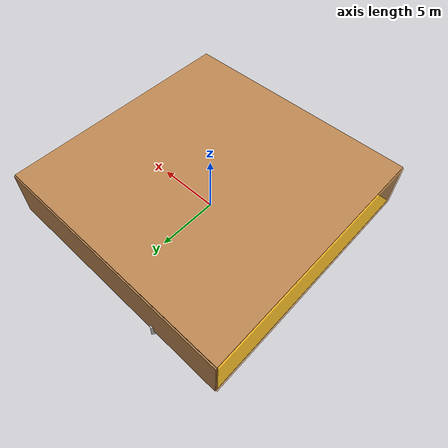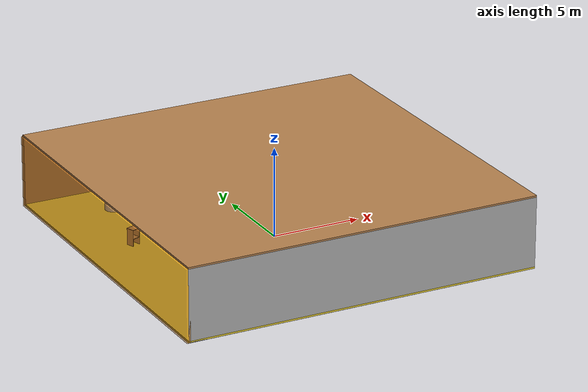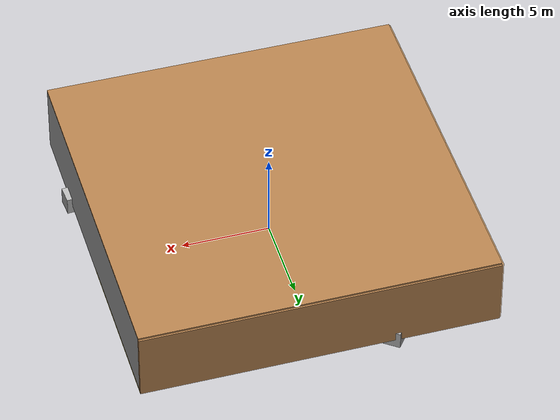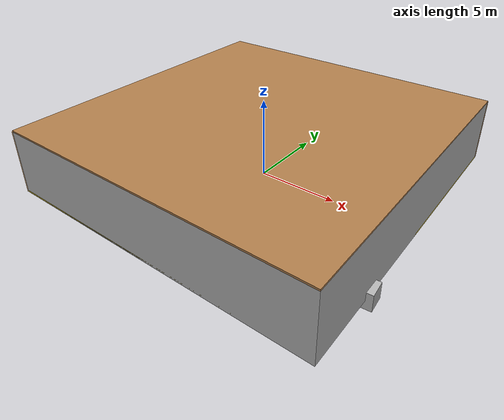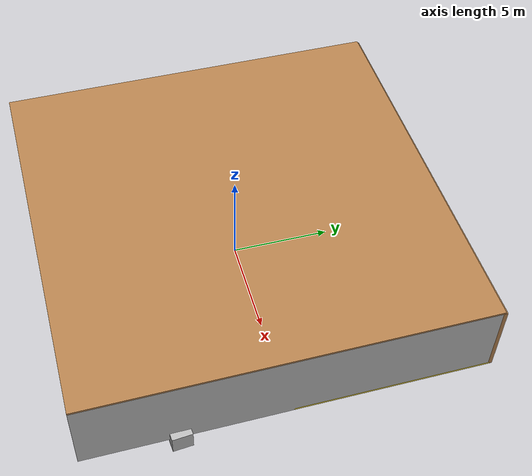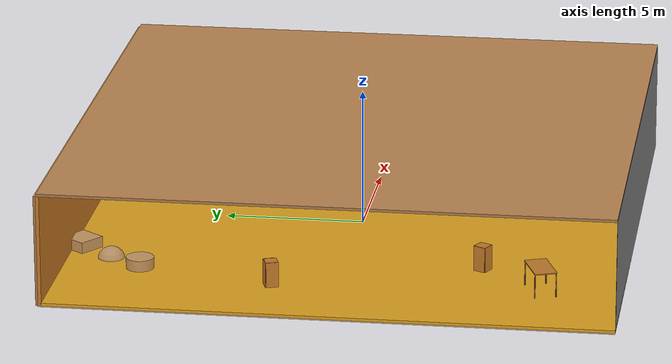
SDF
<sdf version="1.4">
 <world name="default">
  <physics type="ode">
   <max_step_size>0.001</max_step_size>
   <real_time_factor>1</real_time_factor>
   <real_time_update_rate>1000</real_time_update_rate>
   <gravity>0 0 -9.8</gravity>
  </physics>
  <scene><ambient>0.4 0.4 0.4 1</ambient><background>0.7 0.7 0.7 1</background><shadows>1</shadows></scene>
  <model name="Surrounding">
   <static>1</static>
   <link name="Ceiling">
    <collision name="Ceiling_Collision"><geometry><box><size>20 20 0.1</size></box></geometry></collision>
    <visual name="Ceiling_Visual">
     <geometry><box><size>20 20 0.1</size></box></geometry>
     <material>
      <script><uri>file://media/materials/scripts/gazebo.material</uri><name>Gazebo/WoodPallet</name></script>
     </material>
    </visual>
    <pose>0 0 4.05 0 0 0</pose>
   </link>
   <link name="Wall_South">
    <collision name="Wall_South_Collision">
     <geometry><box><size>20 0 4</size></box></geometry>
     <pose>0 0 2 0 -0 0</pose>
    </collision>
    <visual name="Wall_South_Visual">
     <pose>0 0 2 0 -0 0</pose>
     <geometry><box><size>20 0 4</size></box></geometry>
     <material>
      <script><uri>file://media/materials/scripts/gazebo.material</uri><name>Gazebo/Pioneer2Body</name></script>
     </material>
    </visual>
    <velocity_decay><linear>0</linear><angular>0</angular></velocity_decay>
    <pose>0 -10 0 0 -0 0</pose>
   </link>
   <link name="Wall_East">
    <collision name="Wall_21_Collision">
     <geometry><box><size>20 0 4</size></box></geometry>
     <pose>0 0 2 0 -0 0</pose>
    </collision>
    <visual name="Wall_21_Visual">
     <pose>0 0 2 0 -0 0</pose>
     <geometry><box><size>20 0 4</size></box></geometry>
     <material>
      <script><uri>file://media/materials/scripts/gazebo.material</uri><name>Gazebo/LightOn</name></script>
     </material>
    </visual>
    <velocity_decay><linear>0</linear><angular>0</angular></velocity_decay>
    <pose>10 0 0 0 -0 1.5708</pose>
   </link>
   <link name="Wall_North">
    <collision name="Wall_22_Collision">
     <geometry><box><size>20 0.2 4</size></box></geometry>
     <pose>0 0 2 0 -0 0</pose>
    </collision>
    <visual name="Wall_22_Visual">
     <pose>0 0 2 0 -0 0</pose>
     <geometry><box><size>20 0.2 4</size></box></geometry>
     <material>
      <script><uri>file://media/materials/scripts/gazebo.material</uri><name>Gazebo/WoodPallet</name></script>
     </material>
    </visual>
    <velocity_decay><linear>0</linear><angular>0</angular></velocity_decay>
    <pose>0 10 0 0 -0 0</pose>
   </link>
   <link name="Wall_West">
    <collision name="Wall_23_Collision">
     <geometry><box><size>20 0.2 4</size></box></geometry>
     <pose>0 0 2 0 -0 0</pose>
    </collision>
    <visual name="Wall_23_Visual">
     <pose>0 0 2 0 -0 0</pose>
     <geometry><box><size>20 0.2 4</size></box></geometry>
     <material>
      <script>
       <uri>file://media/materials/scripts/gazebo.material</uri>
       <name>Gazebo/OrangeTransparent</name>
      </script>
     </material>
    </visual>
    <velocity_decay><linear>0</linear><angular>0</angular></velocity_decay>
    <pose>-10 0 0 0 0 -1.5708</pose>
   </link>
   <link name="Ground_link">
    <collision name="collision">
     <pose>0 0 .05 0 -0 0</pose>
     <geometry><box><size>20 20 0.1</size></box></geometry>
    </collision>
    <visual name="visual">
     <pose>0 0 .05 0 -0 0</pose>
     <geometry><box><size>20 20 0.1</size></box></geometry>
     <material>
      <script><uri>file://media/materials/scripts/gazebo.material</uri><name>Gazebo/ZincYellow</name></script>
     </material>
    </visual>
   </link>
   <static>1</static>
  </model>
  <spherical_coordinates>
   <surface_model>EARTH_WGS84</surface_model>
   <latitude_deg>0</latitude_deg>
   <longitude_deg>0</longitude_deg>
   <elevation>0</elevation>
   <heading_deg>0</heading_deg>
  </spherical_coordinates>
  <light name="lightball_0" type="diffuse">
   <diffuse>0.8 0.8 0.8 1</diffuse>
   <specular>0.2 0.2 0.2 1</specular>
   <attenuation>
    <range>100</range>
    <constant>0.7</constant>
    <linear>0.01</linear>
    <quadratic>0.001</quadratic>
   </attenuation>
   <direction>-0.5 0.1 -0.9</direction>
   <pose>-0.811851616547 -2.86247579366 1.97362211636 0 0 0</pose>
  </light>
  <light name="lightball_1" type="diffuse">
   <diffuse>0.8 0.8 0.8 1</diffuse>
   <specular>0.2 0.2 0.2 1</specular>
   <attenuation>
    <range>100</range>
    <constant>0.7</constant>
    <linear>0.01</linear>
    <quadratic>0.001</quadratic>
   </attenuation>
   <direction>-0.5 0.1 -0.9</direction>
   <pose>-4.6896741777 -4.73260427567 0.754988459226 0 0 0</pose>
  </light>
  <light name="lightball_2" type="diffuse">
   <diffuse>0.8 0.8 0.8 1</diffuse>
   <specular>0.2 0.2 0.2 1</specular>
   <attenuation>
    <range>100</range>
    <constant>0.7</constant>
    <linear>0.01</linear>
    <quadratic>0.001</quadratic>
   </attenuation>
   <direction>-0.5 0.1 -0.9</direction>
   <pose>5.36265663696 -9.76695120043 0.93157612333 0 0 0</pose>
  </light>
  <light name="lightball_3" type="diffuse">
   <diffuse>0.8 0.8 0.8 1</diffuse>
   <specular>0.2 0.2 0.2 1</specular>
   <attenuation>
    <range>100</range>
    <constant>0.7</constant>
    <linear>0.01</linear>
    <quadratic>0.001</quadratic>
   </attenuation>
   <direction>-0.5 0.1 -0.9</direction>
   <pose>-2.78362565743 -4.33732100308 0.895622402523 0 0 0</pose>
  </light>
  <light name="lightball_4" type="diffuse">
   <diffuse>0.8 0.8 0.8 1</diffuse>
   <specular>0.2 0.2 0.2 1</specular>
   <attenuation>
    <range>100</range>
    <constant>0.7</constant>
    <linear>0.01</linear>
    <quadratic>0.001</quadratic>
   </attenuation>
   <direction>-0.5 0.1 -0.9</direction>
   <pose>-8.8911760233 -0.11603063351 3.23736985585 0 0 0</pose>
  </light>
  <light name="lightball_5" type="diffuse">
   <diffuse>0.8 0.8 0.8 1</diffuse>
   <specular>0.2 0.2 0.2 1</specular>
   <attenuation>
    <range>100</range>
    <constant>0.7</constant>
    <linear>0.01</linear>
    <quadratic>0.001</quadratic>
   </attenuation>
   <direction>-0.5 0.1 -0.9</direction>
   <pose>5.64049719361 6.90563437027 2.77227145892 0 0 0</pose>
  </light>
  <light name="lightball_6" type="diffuse">
   <diffuse>0.8 0.8 0.8 1</diffuse>
   <specular>0.2 0.2 0.2 1</specular>
   <attenuation>
    <range>100</range>
    <constant>0.7</constant>
    <linear>0.01</linear>
    <quadratic>0.001</quadratic>
   </attenuation>
   <direction>-0.5 0.1 -0.9</direction>
   <pose>6.03220400051 1.9082886847 1.74126424679 0 0 0</pose>
  </light>
  <light name="lightball_7" type="diffuse">
   <diffuse>0.8 0.8 0.8 1</diffuse>
   <specular>0.2 0.2 0.2 1</specular>
   <attenuation>
    <range>100</range>
    <constant>0.7</constant>
    <linear>0.01</linear>
    <quadratic>0.001</quadratic>
   </attenuation>
   <direction>-0.5 0.1 -0.9</direction>
   <pose>-8.27359342601 -2.37227115131 0.585261045007 0 0 0</pose>
  </light>
  <light name="lightball_8" type="diffuse">
   <diffuse>0.8 0.8 0.8 1</diffuse>
   <specular>0.2 0.2 0.2 1</specular>
   <attenuation>
    <range>100</range>
    <constant>0.7</constant>
    <linear>0.01</linear>
    <quadratic>0.001</quadratic>
   </attenuation>
   <direction>-0.5 0.1 -0.9</direction>
   <pose>-3.10747300157 1.95121464486 1.36223170752 0 0 0</pose>
  </light>
  <light name="lightball_9" type="diffuse">
   <diffuse>0.8 0.8 0.8 1</diffuse>
   <specular>0.2 0.2 0.2 1</specular>
   <attenuation>
    <range>100</range>
    <constant>0.7</constant>
    <linear>0.01</linear>
    <quadratic>0.001</quadratic>
   </attenuation>
   <direction>-0.5 0.1 -0.9</direction>
   <pose>0.958807841512 -3.76098050839 2.10728440974 0 0 0</pose>
  </light>
  <light name="lightball_10" type="diffuse">
   <diffuse>0.8 0.8 0.8 1</diffuse>
   <specular>0.2 0.2 0.2 1</specular>
   <attenuation>
    <range>100</range>
    <constant>0.7</constant>
    <linear>0.01</linear>
    <quadratic>0.001</quadratic>
   </attenuation>
   <direction>-0.5 0.1 -0.9</direction>
   <pose>0.0567107433366 2.21523764466 1.87416592918 0 0 0</pose>
  </light>
  <light name="lightball_11" type="diffuse">
   <diffuse>0.8 0.8 0.8 1</diffuse>
   <specular>0.2 0.2 0.2 1</specular>
   <attenuation>
    <range>100</range>
    <constant>0.7</constant>
    <linear>0.01</linear>
    <quadratic>0.001</quadratic>
   </attenuation>
   <direction>-0.5 0.1 -0.9</direction>
   <pose>3.58086840276 -3.63932082592 2.03333924451 0 0 0</pose>
  </light>
  <light name="lightball_12" type="diffuse">
   <diffuse>0.8 0.8 0.8 1</diffuse>
   <specular>0.2 0.2 0.2 1</specular>
   <attenuation>
    <range>100</range>
    <constant>0.7</constant>
    <linear>0.01</linear>
    <quadratic>0.001</quadratic>
   </attenuation>
   <direction>-0.5 0.1 -0.9</direction>
   <pose>-9.97247272052 -0.526121202973 1.68971643459 0 0 0</pose>
  </light>
  <light name="lightball_13" type="diffuse">
   <diffuse>0.8 0.8 0.8 1</diffuse>
   <specular>0.2 0.2 0.2 1</specular>
   <attenuation>
    <range>100</range>
    <constant>0.7</constant>
    <linear>0.01</linear>
    <quadratic>0.001</quadratic>
   </attenuation>
   <direction>-0.5 0.1 -0.9</direction>
   <pose>-2.93840973291 -0.345354877517 3.72970270124 0 0 0</pose>
  </light>
  <include><uri>model://table</uri><pose>-6.51791799129 -7.1091938626 0 0 0 0.350867602127</pose></include>
  <include><uri>model://cabinet</uri><pose>-7.17886852808 2.28890343131 0 0 0 1.91931275739</pose></include>
  <include><uri>model://cabinet</uri><pose>-4.65748594975 -4.89541220134 0 0 0 2.66232052274</pose></include>
  <include>
   <uri>model://textured_shapes</uri>
   <pose>-5.13273418507 8.35893491881 0 0 0 2.50322109713</pose>
  </include>
  <include>
   <uri>model://construction_cone</uri>
   <pose>1.29317001234 -1.84278738103 0 0 0 0.571173444181</pose>
  </include>
  <include><uri>model://cabinet</uri><pose>3.99932055136 -7.2297125906 0 0 0 2.53489950142</pose></include>
  <include><uri>model://cabinet</uri><pose>5.59020639078 -2.37395271992 0 0 0 2.76289868699</pose></include>
  <include>
   <uri>model://textured_shapes</uri>
   <pose>8.3327011924 -5.390991809 0 0 0 1.64913922586</pose>
  </include>
  <include><uri>model://cabinet</uri><pose>7.23180381917 3.47104159954 0 0 0 3.00865082256</pose></include>
 </world>
</sdf>

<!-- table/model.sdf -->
<sdf version="1.5">
  <model name="table">
    <static>true</static>
    <link name="link">
      <collision name="surface">
        <pose>0 0 1.0 0 0 0</pose>
        <geometry>
          <box>
            <size>1.5 0.8 0.03</size>
          </box>
        </geometry>
        <surface>
          <friction>
            <ode>
              <mu>0.6</mu>
              <mu2>0.6</mu2>
            </ode>
          </friction>
        </surface>
      </collision>
      <visual name="visual1">
        <pose>0 0 1.0 0 0 0</pose>
        <geometry>
          <box>
            <size>1.5 0.8 0.03</size>
          </box>
        </geometry>
        <material>
          <script>
            <uri>model://media/materials/scripts/gazebo.material</uri>
            <name>Gazebo/Wood</name>
          </script>
        </material>
      </visual>
      <collision name="front_left_leg">
        <pose>0.68 0.38 0.5 0 0 0</pose>
        <geometry>
          <cylinder>
            <radius>0.02</radius>
            <length>1.0</length>
          </cylinder>
        </geometry>
      </collision>
      <visual name="front_left_leg">
        <pose>0.68 0.38 0.5 0 0 0</pose>
        <geometry>
          <cylinder>
            <radius>0.02</radius>
            <length>1.0</length>
          </cylinder>
        </geometry>
        <material>
          <script>
            <uri>model://media/materials/scripts/gazebo.material</uri>
            <name>Gazebo/Grey</name>
          </script>
        </material>
      </visual>
      <collision name="front_right_leg">
        <pose>0.68 -0.38 0.5 0 0 0</pose>
        <geometry>
          <cylinder>
            <radius>0.02</radius>
            <length>1.0</length>
          </cylinder>
        </geometry>
      </collision>
      <visual name="front_right_leg">
        <pose>0.68 -0.38 0.5 0 0 0</pose>
        <geometry>
          <cylinder>
            <radius>0.02</radius>
            <length>1.0</length>
          </cylinder>
        </geometry>
        <material>
          <script>
            <uri>model://media/materials/scripts/gazebo.material</uri>
            <name>Gazebo/Grey</name>
          </script>
        </material>
      </visual>
      <collision name="back_right_leg">
        <pose>-0.68 -0.38 0.5 0 0 0</pose>
        <geometry>
          <cylinder>
            <radius>0.02</radius>
            <length>1.0</length>
          </cylinder>
        </geometry>
      </collision>
      <visual name="back_right_leg">
        <pose>-0.68 -0.38 0.5 0 0 0</pose>
        <geometry>
          <cylinder>
            <radius>0.02</radius>
            <length>1.0</length>
          </cylinder>
        </geometry>
        <material>
          <script>
            <uri>model://media/materials/scripts/gazebo.material</uri>
            <name>Gazebo/Grey</name>
          </script>
        </material>
      </visual>
      <collision name="back_left_leg">
        <pose>-0.68 0.38 0.5 0 0 0</pose>
        <geometry>
          <cylinder>
            <radius>0.02</radius>
            <length>1.0</length>
          </cylinder>
        </geometry>
      </collision>
      <visual name="back_left_leg">
        <pose>-0.68 0.38 0.5 0 0 0</pose>
        <geometry>
          <cylinder>
            <radius>0.02</radius>
            <length>1.0</length>
          </cylinder>
        </geometry>
        <material>
          <script>
            <uri>model://media/materials/scripts/gazebo.material</uri>
            <name>Gazebo/Grey</name>
          </script>
        </material>
      </visual>
    </link>
  </model>
</sdf>

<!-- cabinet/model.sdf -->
<sdf version="1.5">
  <model name="cabinet">
    <static>true</static>
    <link name="cabinet_bottom_plate">
      <inertial>
        <pose>0 0 -1 0 0 0</pose>
        <inertia>
          <ixx>2.050000</ixx>
          <ixy>0</ixy>
          <ixz>0</ixz>
          <iyy>2.050000</iyy>
          <iyz>0</iyz>
          <izz>2.050000</izz>
        </inertia>
        <mass>25.000000</mass>
      </inertial>
      <collision name="cabinet_bottom_plate_geom">
        <pose>0 0 0.010000 0 0 0</pose>
        <geometry>
          <box>
            <size>0.450000 0.450000 0.020000</size>
          </box>
        </geometry>
      </collision>
      <visual name="cabinet_bottom_plate_geom_visual">
        <pose>0 0 0.010000 0 0 0</pose>
        <geometry>
          <box>
            <size>0.450000 0.450000 0.020000</size>
          </box>
        </geometry>
        <material>
          <script>
            <uri>model://media/materials/scripts/gazebo.material</uri>
            <name>Gazebo/Wood</name>
          </script>
        </material>
      </visual>
      <collision name="cabinet_bottom_plate_geom_cabinet_back_plate">
        <pose>0.235000 0 0.510000 0 0 0</pose>
        <geometry>
          <box>
            <size>0.020000 0.450000 1.020000</size>
          </box>
        </geometry>
      </collision>
      <visual name="cabinet_bottom_plate_geom_cabinet_back_plate_visual">
        <pose>0.235000 0 0.510000 0 0 0</pose>
        <geometry>
          <box>
            <size>0.020000 0.450000 1.020000</size>
          </box>
        </geometry>
        <material>
          <script>
            <uri>model://media/materials/scripts/gazebo.material</uri>
            <name>Gazebo/Wood</name>
          </script>
        </material>
      </visual>
      <collision name="cabinet_bottom_plate_geom_cabinet_left_plate">
        <pose>0 0.235000 0.510000 0 0 0</pose>
        <geometry>
          <box>
            <size>0.450000 0.020000 1.020000</size>
          </box>
        </geometry>
      </collision>
      <visual name="cabinet_bottom_plate_geom_cabinet_left_plate_visual">
        <pose>0 0.235000 0.510000 0 0 0</pose>
        <geometry>
          <box>
            <size>0.450000 0.020000 1.020000</size>
          </box>
        </geometry>
        <material>
          <script>
            <uri>model://media/materials/scripts/gazebo.material</uri>
            <name>Gazebo/Wood</name>
          </script>
        </material>
      </visual>
      <collision name="cabinet_bottom_plate_geom_cabinet_middle_plate">
        <pose>0 0 0.510000 0 0 0</pose>
        <geometry>
          <box>
            <size>0.450000 0.450000 0.020000</size>
          </box>
        </geometry>
      </collision>
      <visual name="cabinet_bottom_plate_geom_cabinet_middle_plate_visual">
        <pose>0 0 0.510000 0 0 0</pose>
        <geometry>
          <box>
            <size>0.450000 0.450000 0.020000</size>
          </box>
        </geometry>
        <material>
          <script>
            <uri>model://media/materials/scripts/gazebo.material</uri>
            <name>Gazebo/Wood</name>
          </script>
        </material>
      </visual>
      <collision name="cabinet_bottom_plate_geom_cabinet_right_plate">
        <pose>0 -0.235000 0.510000 0 0 0</pose>
        <geometry>
          <box>
            <size>0.450000 0.020000 1.020000</size>
          </box>
        </geometry>
      </collision>
      <visual name="cabinet_bottom_plate_geom_cabinet_right_plate_visual">
        <pose>0 -0.235000 0.510000 0 0 0</pose>
        <geometry>
          <box>
            <size>0.450000 0.020000 1.020000</size>
          </box>
        </geometry>
        <material>
          <script>
            <uri>model://media/materials/scripts/gazebo.material</uri>
            <name>Gazebo/Wood</name>
          </script>
        </material>
      </visual>
      <collision name="cabinet_bottom_plate_geom_cabinet_top_plate">
        <pose>0 0 1.010000 0 0 0</pose>
        <geometry>
          <box>
            <size>0.450000 0.450000 0.020000</size>
          </box>
        </geometry>
      </collision>
      <visual name="cabinet_bottom_plate_geom_cabinet_top_plate_visual">
        <pose>0 0 1.010000 0 0 0</pose>
        <geometry>
          <box>
            <size>0.450000 0.450000 0.020000</size>
          </box>
        </geometry>
        <material>
          <script>
            <uri>model://media/materials/scripts/gazebo.material</uri>
            <name>Gazebo/Wood</name>
          </script>
        </material>
      </visual>
    </link>
  </model>
</sdf>

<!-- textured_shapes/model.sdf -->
<sdf version="1.6">
  <model name="textured_shapes">
    <pose>0 0 0.5 0 0 0</pose>
    <link name="box">
      <pose>0 -1.5 0 0 0 0</pose>
      <collision name="collision">
        <geometry>
          <box>
            <size>1 1 1</size>
          </box>
        </geometry>
      </collision>
      <visual name="visual">
        <geometry>
          <box>
            <size>1 1 1</size>
          </box>
        </geometry>
        <material>
          <script>
            <uri>model://../model_source/models/textured_shapes/materials/scripts</uri>
            <uri>model://../model_source/models/textured_shapes/materials/textures</uri>
            <name>TexturedShape/Squares</name>
          </script>
        </material>
      </visual>
    </link>
    <link name="sphere">
      <collision name="collision">
        <geometry>
          <sphere>
            <radius>0.5</radius>
          </sphere>
        </geometry>
      </collision>
      <visual name="visual">
        <geometry>
          <sphere>
            <radius>0.5</radius>
          </sphere>
        </geometry>
        <material>
          <script>
            <uri>model://../model_source/models/textured_shapes/materials/scripts</uri>
            <uri>model://../model_source/models/textured_shapes/materials/textures</uri>
            <name>TexturedShape/Squares</name>
          </script>
        </material>
      </visual>
    </link>
    <link name="cylinder">
      <pose>0 1.5 0 0 0 0</pose>
      <collision name="collision">
        <geometry>
          <cylinder>
            <radius>0.5</radius>
            <length>1</length>
          </cylinder>
        </geometry>
      </collision>
      <visual name="visual">
        <geometry>
          <cylinder>
            <radius>0.5</radius>
            <length>1</length>
          </cylinder>
        </geometry>
        <material>
          <script>
            <uri>model://../model_source/models/textured_shapes/materials/scripts</uri>
            <uri>model://../model_source/models/textured_shapes/materials/textures</uri>
            <name>TexturedShape/Squares</name>
          </script>
        </material>
      </visual>
    </link>
  </model>
</sdf>

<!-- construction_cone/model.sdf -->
<sdf version="1.5">
  <model name="Construction Cone">
    <link name="link">
      <collision name="collision">
        <geometry>
          <mesh>
            <scale>10 10 10</scale>
            <uri>file://isr-testbed/construction_cone/meshes/construction_cone.dae</uri>
          </mesh>
        </geometry>
      </collision>
      <visual name="visual">
        <geometry>
          <mesh>
            <scale>10 10 10</scale>
            <uri>file://isr-testbed/construction_cone/meshes/construction_cone.dae</uri>
          </mesh>
        </geometry>
      </visual>
    </link>
  </model>
</sdf>
